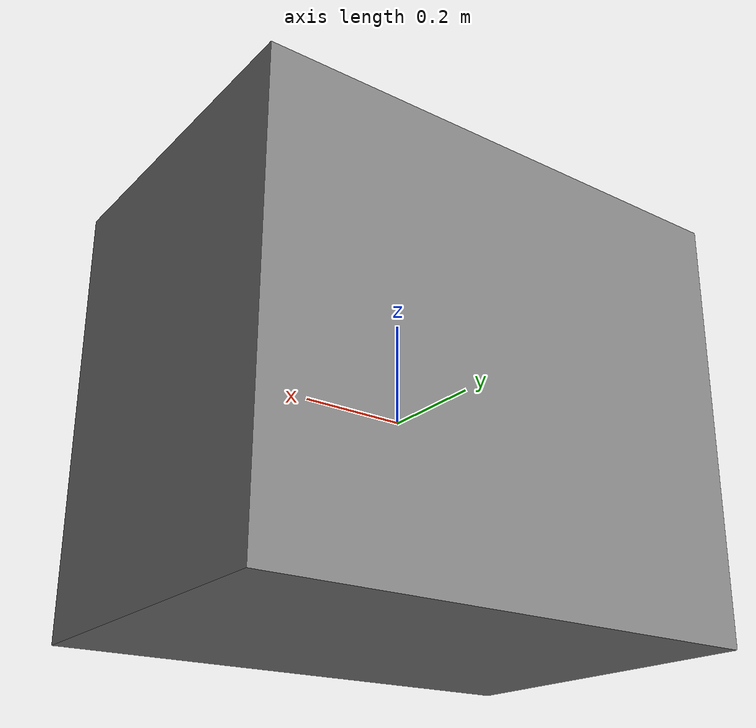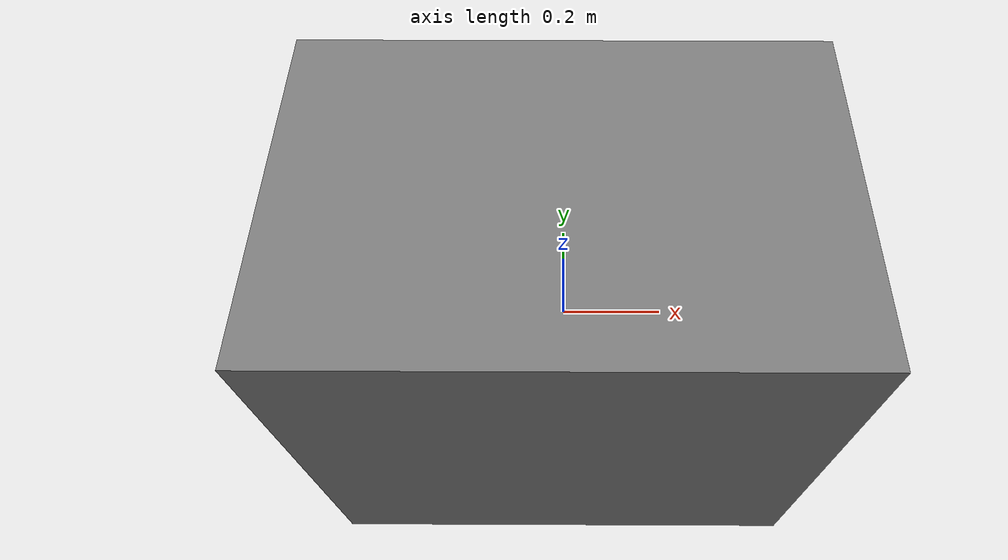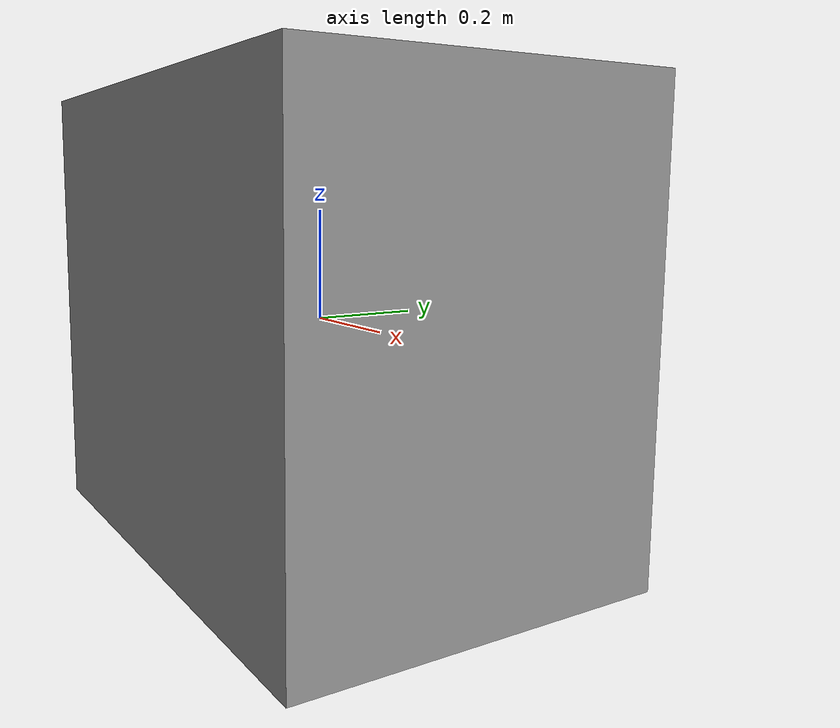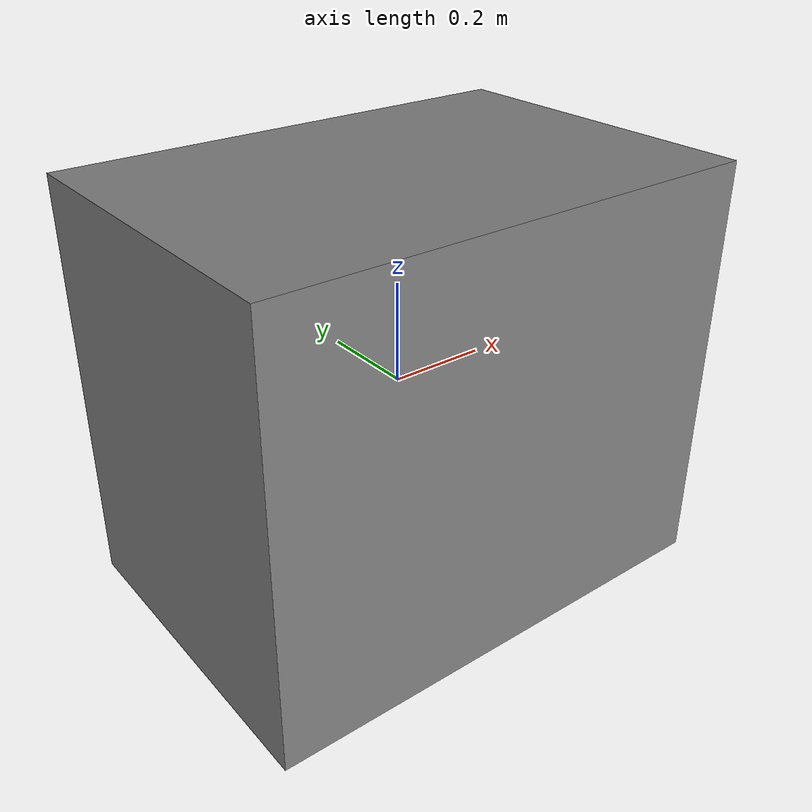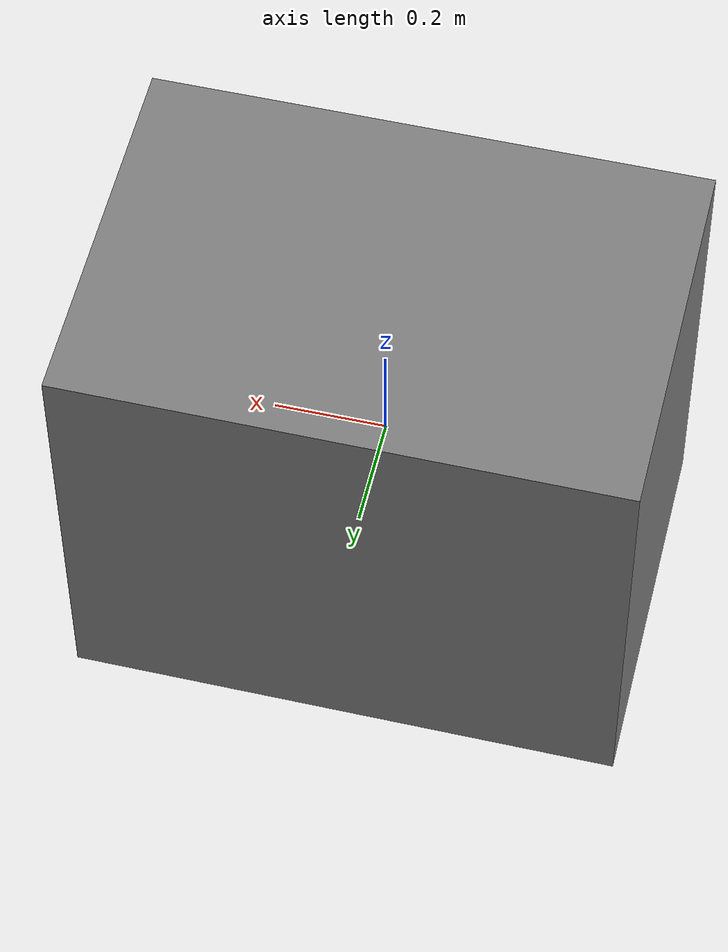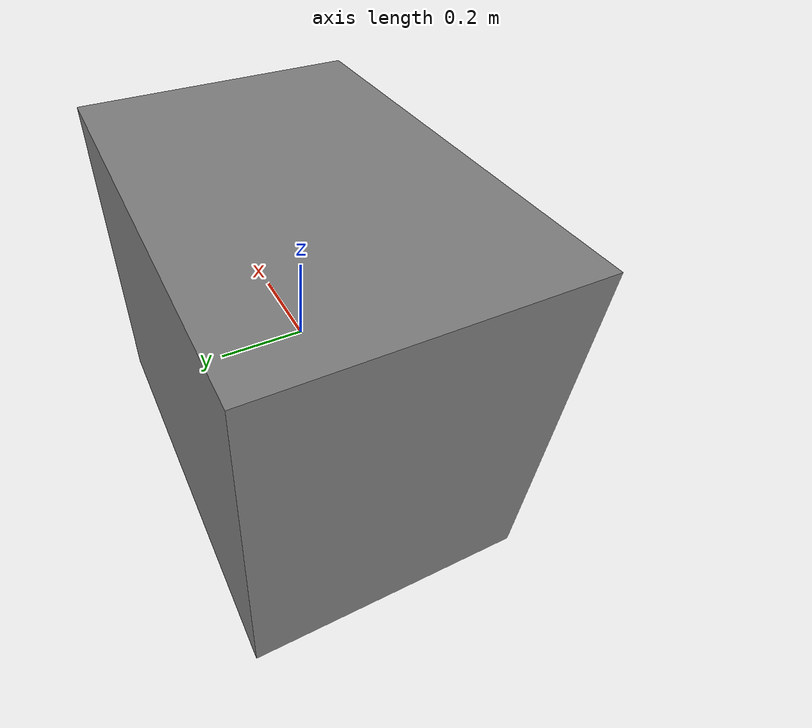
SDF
<?xml version="1.0" ?>
<sdf version="1.6">
  <model name="franka_cart">
    <static>true</static>

    <link name="franka_cart_link">

      <visual name="franka_cart_visual">
        <!-- Pose removed as it is now defined in the world file -->
        <geometry>
          <box>
            <size> 0.9890125 0.6746875 0.8397875 </size>
          </box>
        </geometry>
        <material>
            <ambient>0.0 0.0 0.0 1.0</ambient>
            <diffuse>0.5 0.5 0.5 1.0</diffuse>
        </material>
      </visual>

      <collision name="franka_cart_collision">
        <!-- Pose removed as it is now defined in the world file -->
        <geometry>
          <box>
            <size> 0.9890125 0.6746875 0.8397875 </size>
          </box>
        </geometry>
      </collision>

    </link>
  </model>
</sdf>
